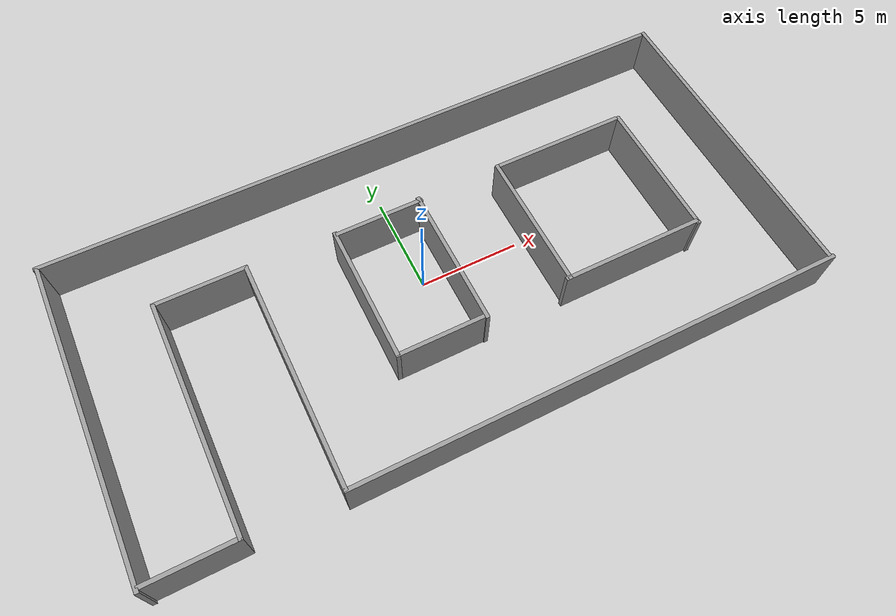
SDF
<?xml version='1.0'?>
<sdf version='1.4'>
  <model name='arena'>
    <link name='Wall_133'>
      <collision name='Wall_133_Collision'>
        <geometry>
          <box>
            <size>32.783 0.2 2.5</size>
          </box>
        </geometry>
        <pose>0 0 1.25 0 -0 0</pose>
      </collision>
      <visual name='Wall_133_Visual'>
        <pose>0 0 1.25 0 -0 0</pose>
        <geometry>
          <box>
            <size>32.783 0.2 2.5</size>
          </box>
        </geometry>
        <material>
          <script>
            <uri>file://media/materials/scripts/gazebo.material</uri>
            <name>Gazebo/Grey</name>
          </script>
        </material>
      </visual>
      <velocity_decay>
        <linear>0</linear>
        <angular>0</angular>
      </velocity_decay>
      <pose>0.268621 7.34314 0 0 -0 0</pose>
    </link>
    <link name='Wall_136'>
      <collision name='Wall_136_Collision'>
        <geometry>
          <box>
            <size>15.7692 0.2 2.5</size>
          </box>
        </geometry>
        <pose>0 0 1.25 0 -0 0</pose>
      </collision>
      <visual name='Wall_136_Visual'>
        <pose>0 0 1.25 0 -0 0</pose>
        <geometry>
          <box>
            <size>15.7692 0.2 2.5</size>
          </box>
        </geometry>
        <material>
          <script>
            <uri>file://media/materials/scripts/gazebo.material</uri>
            <name>Gazebo/Grey</name>
          </script>
        </material>
      </visual>
      <velocity_decay>
        <linear>0</linear>
        <angular>0</angular>
      </velocity_decay>
      <pose>-15.9694 -0.441473 0 0 0 -1.5708</pose>
    </link>
    <link name='Wall_140'>
      <collision name='Wall_140_Collision'>
        <geometry>
          <box>
            <size>15.6087 0.2 2.5</size>
          </box>
        </geometry>
        <pose>0 0 1.25 0 -0 0</pose>
      </collision>
      <visual name='Wall_140_Visual'>
        <pose>0 0 1.25 0 -0 0</pose>
        <geometry>
          <box>
            <size>15.6087 0.2 2.5</size>
          </box>
        </geometry>
        <material>
          <script>
            <uri>file://media/materials/scripts/gazebo.material</uri>
            <name>Gazebo/Grey</name>
          </script>
        </material>
      </visual>
      <velocity_decay>
        <linear>0</linear>
        <angular>0</angular>
      </velocity_decay>
      <pose>16.7741 -0.361219 0 0 0 -1.5708</pose>
    </link>
    <link name='Wall_144'>
      <collision name='Wall_144_Collision'>
        <geometry>
          <box>
            <size>4.26619 0.2 2.5</size>
          </box>
        </geometry>
        <pose>0 0 1.25 0 -0 0</pose>
      </collision>
      <visual name='Wall_144_Visual'>
        <pose>0 0 1.25 0 -0 0</pose>
        <geometry>
          <box>
            <size>4.26619 0.2 2.5</size>
          </box>
        </geometry>
        <material>
          <script>
            <uri>file://media/materials/scripts/gazebo.material</uri>
            <name>Gazebo/Grey</name>
          </script>
        </material>
      </visual>
      <velocity_decay>
        <linear>0</linear>
        <angular>0</angular>
      </velocity_decay>
      <pose>-13.8293 -8.11908 0 0 -0 0</pose>
    </link>
    <link name='Wall_145'>
      <collision name='Wall_145_Collision'>
        <geometry>
          <box>
            <size>11.4355 0.2 2.5</size>
          </box>
        </geometry>
        <pose>0 0 1.25 0 -0 0</pose>
      </collision>
      <visual name='Wall_145_Visual'>
        <pose>0 0 1.25 0 -0 0</pose>
        <geometry>
          <box>
            <size>11.4355 0.2 2.5</size>
          </box>
        </geometry>
        <material>
          <script>
            <uri>file://media/materials/scripts/gazebo.material</uri>
            <name>Gazebo/Grey</name>
          </script>
        </material>
      </visual>
      <velocity_decay>
        <linear>0</linear>
        <angular>0</angular>
      </velocity_decay>
      <pose>-11.7962 -2.50132 0 0 -0 1.5708</pose>
    </link>
    <link name='Wall_151'>
      <collision name='Wall_151_Collision'>
        <geometry>
          <box>
            <size>4.5872 0.2 2.5</size>
          </box>
        </geometry>
        <pose>0 0 1.25 0 -0 0</pose>
      </collision>
      <visual name='Wall_151_Visual'>
        <pose>0 0 1.25 0 -0 0</pose>
        <geometry>
          <box>
            <size>4.5872 0.2 2.5</size>
          </box>
        </geometry>
        <material>
          <script>
            <uri>file://media/materials/scripts/gazebo.material</uri>
            <name>Gazebo/Grey</name>
          </script>
        </material>
      </visual>
      <velocity_decay>
        <linear>0</linear>
        <angular>0</angular>
      </velocity_decay>
      <pose>-9.60259 3.16995 0 0 -0 0</pose>
    </link>
    <link name='Wall_152'>
      <collision name='Wall_152_Collision'>
        <geometry>
          <box>
            <size>11.5425 0.2 2.5</size>
          </box>
        </geometry>
        <pose>0 0 1.25 0 -0 0</pose>
      </collision>
      <visual name='Wall_152_Visual'>
        <pose>0 0 1.25 0 -0 0</pose>
        <geometry>
          <box>
            <size>11.5425 0.2 2.5</size>
          </box>
        </geometry>
        <material>
          <script>
            <uri>file://media/materials/scripts/gazebo.material</uri>
            <name>Gazebo/Grey</name>
          </script>
        </material>
      </visual>
      <velocity_decay>
        <linear>0</linear>
        <angular>0</angular>
      </velocity_decay>
      <pose>-7.40899 -2.50132 0 0 0 -1.5708</pose>
    </link>
    <link name='Wall_154'>
      <collision name='Wall_154_Collision'>
        <geometry>
          <box>
            <size>24.4901 0.2 2.5</size>
          </box>
        </geometry>
        <pose>0 0 1.25 0 -0 0</pose>
      </collision>
      <visual name='Wall_154_Visual'>
        <pose>0 0 1.25 0 -0 0</pose>
        <geometry>
          <box>
            <size>24.4901 0.2 2.5</size>
          </box>
        </geometry>
        <material>
          <script>
            <uri>file://media/materials/scripts/gazebo.material</uri>
            <name>Gazebo/Grey</name>
          </script>
        </material>
      </visual>
      <velocity_decay>
        <linear>0</linear>
        <angular>0</angular>
      </velocity_decay>
      <pose>4.73608 -8.22609 0 0 -0 0</pose>
    </link>
    <link name='Wall_156'>
      <collision name='Wall_156_Collision'>
        <geometry>
          <box>
            <size>7.04832 0.2 2.5</size>
          </box>
        </geometry>
        <pose>0 0 1.25 0 -0 0</pose>
      </collision>
      <visual name='Wall_156_Visual'>
        <pose>0 0 1.25 0 -0 0</pose>
        <geometry>
          <box>
            <size>7.04832 0.2 2.5</size>
          </box>
        </geometry>
        <material>
          <script>
            <uri>file://media/materials/scripts/gazebo.material</uri>
            <name>Gazebo/Grey</name>
          </script>
        </material>
      </visual>
      <velocity_decay>
        <linear>0</linear>
        <angular>0</angular>
      </velocity_decay>
      <pose>-3.07529 -0.414722 0 0 0 -1.5708</pose>
    </link>
    <link name='Wall_157'>
      <collision name='Wall_157_Collision'>
        <geometry>
          <box>
            <size>4.37319 0.2 2.5</size>
          </box>
        </geometry>
        <pose>0 0 1.25 0 -0 0</pose>
      </collision>
      <visual name='Wall_157_Visual'>
        <pose>0 0 1.25 0 -0 0</pose>
        <geometry>
          <box>
            <size>4.37319 0.2 2.5</size>
          </box>
        </geometry>
        <material>
          <script>
            <uri>file://media/materials/scripts/gazebo.material</uri>
            <name>Gazebo/Grey</name>
          </script>
        </material>
      </visual>
      <velocity_decay>
        <linear>0</linear>
        <angular>0</angular>
      </velocity_decay>
      <pose>-0.988687 -3.83888 0 0 -0 0</pose>
    </link>
    <link name='Wall_161'>
      <collision name='Wall_161_Collision'>
        <geometry>
          <box>
            <size>7.15533 0.2 2.5</size>
          </box>
        </geometry>
        <pose>0 0 1.25 0 -0 0</pose>
      </collision>
      <visual name='Wall_161_Visual'>
        <pose>0 0 1.25 0 -0 0</pose>
        <geometry>
          <box>
            <size>7.15533 0.2 2.5</size>
          </box>
        </geometry>
        <material>
          <script>
            <uri>file://media/materials/scripts/gazebo.material</uri>
            <name>Gazebo/Grey</name>
          </script>
        </material>
      </visual>
      <velocity_decay>
        <linear>0</linear>
        <angular>0</angular>
      </velocity_decay>
      <pose>1.25842 -0.414722 0 0 -0 1.5708</pose>
    </link>
    <link name='Wall_166'>
      <collision name='Wall_166_Collision'>
        <geometry>
          <box>
            <size>4.4802 0.2 2.5</size>
          </box>
        </geometry>
        <pose>0 0 1.25 0 -0 0</pose>
      </collision>
      <visual name='Wall_166_Visual'>
        <pose>0 0 1.25 0 -0 0</pose>
        <geometry>
          <box>
            <size>4.4802 0.2 2.5</size>
          </box>
        </geometry>
        <material>
          <script>
            <uri>file://media/materials/scripts/gazebo.material</uri>
            <name>Gazebo/Grey</name>
          </script>
        </material>
      </visual>
      <velocity_decay>
        <linear>0</linear>
        <angular>0</angular>
      </velocity_decay>
      <pose>-0.82818 2.95594 0 0 -0 3.14159</pose>
    </link>
    <link name='Wall_170'>
      <collision name='Wall_170_Collision'>
        <geometry>
          <box>
            <size>7.15533 0.2 2.5</size>
          </box>
        </geometry>
        <pose>0 0 1.25 0 -0 0</pose>
      </collision>
      <visual name='Wall_170_Visual'>
        <pose>0 0 1.25 0 -0 0</pose>
        <geometry>
          <box>
            <size>7.15533 0.2 2.5</size>
          </box>
        </geometry>
        <material>
          <script>
            <uri>file://media/materials/scripts/gazebo.material</uri>
            <name>Gazebo/Grey</name>
          </script>
        </material>
      </visual>
      <velocity_decay>
        <linear>0</linear>
        <angular>0</angular>
      </velocity_decay>
      <pose>8.9095 -3.839 0 0 -0 3.14159</pose>
    </link>
    <link name='Wall_172'>
      <collision name='Wall_172_Collision'>
        <geometry>
          <box>
            <size>7.10182 0.2 2.5</size>
          </box>
        </geometry>
        <pose>0 0 1.25 0 -0 0</pose>
      </collision>
      <visual name='Wall_172_Visual'>
        <pose>0 0 1.25 0 -0 0</pose>
        <geometry>
          <box>
            <size>7.10182 0.2 2.5</size>
          </box>
        </geometry>
        <material>
          <script>
            <uri>file://media/materials/scripts/gazebo.material</uri>
            <name>Gazebo/Grey</name>
          </script>
        </material>
      </visual>
      <velocity_decay>
        <linear>0</linear>
        <angular>0</angular>
      </velocity_decay>
      <pose>5.53862 -0.38797 0 0 -0 1.5708</pose>
    </link>
    <link name='Wall_173'>
      <collision name='Wall_173_Collision'>
        <geometry>
          <box>
            <size>6.94132 0.2 2.5</size>
          </box>
        </geometry>
        <pose>0 0 1.25 0 -0 0</pose>
      </collision>
      <visual name='Wall_173_Visual'>
        <pose>0 0 1.25 0 -0 0</pose>
        <geometry>
          <box>
            <size>6.94132 0.2 2.5</size>
          </box>
        </geometry>
        <material>
          <script>
            <uri>file://media/materials/scripts/gazebo.material</uri>
            <name>Gazebo/Grey</name>
          </script>
        </material>
      </visual>
      <velocity_decay>
        <linear>0</linear>
        <angular>0</angular>
      </velocity_decay>
      <pose>8.90927 3.06294 0 0 -0 0</pose>
    </link>
    <link name='Wall_196'>
      <collision name='Wall_196_Collision'>
        <geometry>
          <box>
            <size>7.15836 0.2 2.5</size>
          </box>
        </geometry>
        <pose>0 0 1.25 0 -0 0</pose>
      </collision>
      <visual name='Wall_196_Visual'>
        <pose>0 0 1.25 0 -0 0</pose>
        <geometry>
          <box>
            <size>7.15836 0.2 2.5</size>
          </box>
        </geometry>
        <material>
          <script>
            <uri>file://media/materials/scripts/gazebo.material</uri>
            <name>Gazebo/Grey</name>
          </script>
        </material>
      </visual>
      <velocity_decay>
        <linear>0</linear>
        <angular>0</angular>
      </velocity_decay>
      <pose>12.4378 -0.452903 0 0 0 -1.5708</pose>
    </link>
    <link name='Wall_197'>
      <collision name='Wall_197_Collision'>
        <geometry>
          <box>
            <size>0.21 0.2 2.5</size>
          </box>
        </geometry>
        <pose>0 0 1.25 0 -0 0</pose>
      </collision>
      <visual name='Wall_197_Visual'>
        <pose>0 0 1.25 0 -0 0</pose>
        <geometry>
          <box>
            <size>0.21 0.2 2.5</size>
          </box>
        </geometry>
        <material>
          <script>
            <uri>file://media/materials/scripts/gazebo.material</uri>
            <name>Gazebo/Grey</name>
          </script>
        </material>
      </visual>
      <velocity_decay>
        <linear>0</linear>
        <angular>0</angular>
      </velocity_decay>
      <pose>12.4428 -3.93208 0 0 -0 0</pose>
    </link>
    <static>1</static>
  </model>
</sdf>
